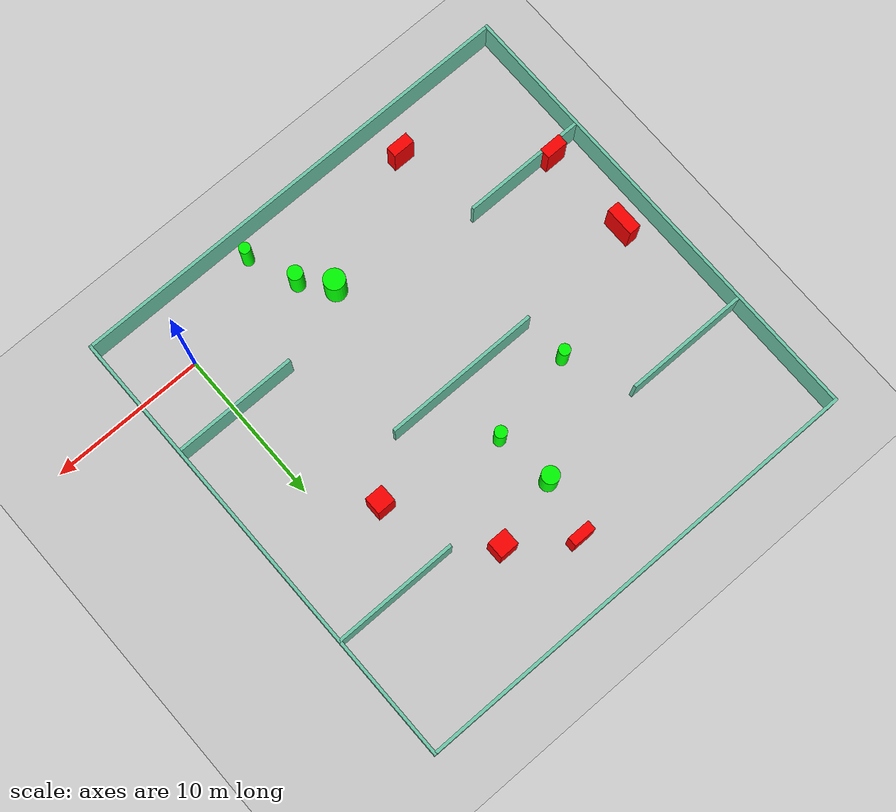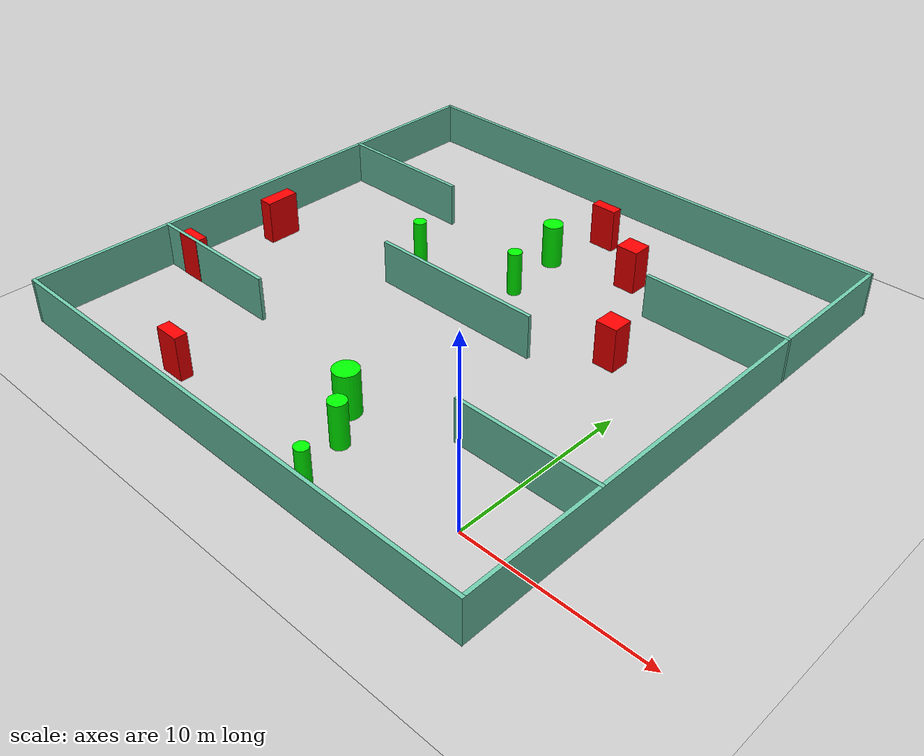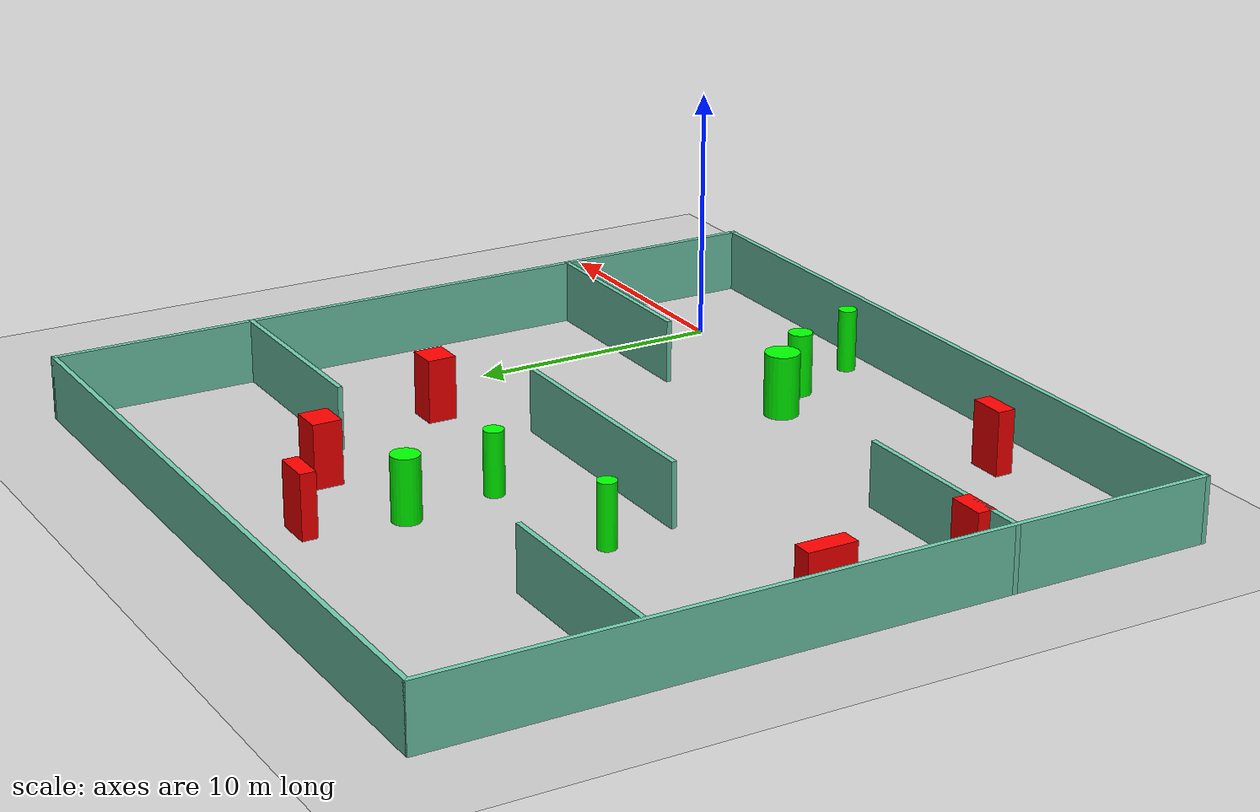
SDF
<sdf version="1.7">
 <world name="default">
  <light name="sun" type="directional">
   <pose>0 0 10 0 -0 0</pose>
   <diffuse>0.8 0.8 0.8 1</diffuse>
   <specular>0.2 0.2 0.2 1</specular>
   <attenuation>
    <range>1000</range>
    <constant>0.9</constant>
    <linear>0.01</linear>
    <quadratic>0.001</quadratic>
   </attenuation>
   <direction>-0.5 0.1 -0.9</direction>
   <spot><inner_angle>0</inner_angle><outer_angle>0</outer_angle><falloff>0</falloff></spot>
  </light>
  <model name="ground_plane">
   <static>1</static>
   <link name="link">
    <collision name="collision">
     <geometry><plane><normal>0 0 1</normal><size>100 100</size></plane></geometry>
     <surface>
      <contact><collide_bitmask>65535</collide_bitmask></contact>
      <friction><ode><mu>100</mu><mu2>50</mu2></ode></friction>
     </surface>
    </collision>
    <visual name="visual">
     <cast_shadows>0</cast_shadows>
     <geometry><plane><normal>0 0 1</normal><size>100 100</size></plane></geometry>
     <material>
      <script><uri>file://media/materials/scripts/gazebo.material</uri><name>Gazebo/Grey</name></script>
     </material>
    </visual>
   </link>
  </model>
  <gravity>0 0 -9.8</gravity>
  <magnetic_field>6e-06 2.3e-05 -4.2e-05</magnetic_field>
  <atmosphere type="adiabatic"/>
  <physics type="ode">
   <max_step_size>0.001</max_step_size>
   <real_time_factor>1</real_time_factor>
   <real_time_update_rate>1000</real_time_update_rate>
  </physics>
  <scene><ambient>0.4 0.4 0.4 1</ambient><background>0.7 0.7 0.7 1</background><shadows>1</shadows></scene>
  <spherical_coordinates>
   <surface_model>EARTH_WGS84</surface_model>
   <latitude_deg>0</latitude_deg>
   <longitude_deg>0</longitude_deg>
   <elevation>0</elevation>
   <heading_deg>0</heading_deg>
  </spherical_coordinates>
  <model name="my_base_walls">
   <link name="Wall_10">
    <collision name="Wall_10_Collision">
     <geometry><box><size>8.2 0.2 2.5</size></box></geometry>
     <pose>0 0 1.25 0 -0 0</pose>
    </collision>
    <visual name="Wall_10_Visual">
     <pose>0 0 1.25 0 -0 0</pose>
     <geometry><box><size>8.2 0.2 2.5</size></box></geometry>
     <material>
      <script><uri>file://media/materials/scripts/gazebo.material</uri><name>Gazebo/Grey</name></script>
      <ambient>0.435294 0.796078 0.67451 1</ambient>
     </material>
     <meta><layer>0</layer></meta>
    </visual>
    <pose>-11 -7 0 0 -0 0</pose>
   </link>
   <link name="Wall_12">
    <collision name="Wall_12_Collision">
     <geometry><box><size>8.2 0.2 2.5</size></box></geometry>
     <pose>0 0 1.25 0 -0 0</pose>
    </collision>
    <visual name="Wall_12_Visual">
     <pose>0 0 1.25 0 -0 0</pose>
     <geometry><box><size>8.2 0.2 2.5</size></box></geometry>
     <material>
      <script><uri>file://media/materials/scripts/gazebo.material</uri><name>Gazebo/Grey</name></script>
      <ambient>0.435294 0.796078 0.67451 1</ambient>
     </material>
     <meta><layer>0</layer></meta>
    </visual>
    <pose>-11 7 0 0 -0 0</pose>
   </link>
   <link name="Wall_14">
    <collision name="Wall_14_Collision">
     <geometry><box><size>8.2 0.2 2.5</size></box></geometry>
     <pose>0 0 1.25 0 -0 0</pose>
    </collision>
    <visual name="Wall_14_Visual">
     <pose>0 0 1.25 0 -0 0</pose>
     <geometry><box><size>8.2 0.2 2.5</size></box></geometry>
     <material>
      <script><uri>file://media/materials/scripts/gazebo.material</uri><name>Gazebo/Grey</name></script>
      <ambient>0.435294 0.796078 0.67451 1</ambient>
     </material>
     <meta><layer>0</layer></meta>
    </visual>
    <pose>11 7 0 0 -0 3.14159</pose>
   </link>
   <link name="Wall_16">
    <collision name="Wall_16_Collision">
     <geometry><box><size>10.2 0.2 2.5</size></box></geometry>
     <pose>0 0 1.25 0 -0 0</pose>
    </collision>
    <visual name="Wall_16_Visual">
     <pose>0 0 1.25 0 -0 0</pose>
     <geometry><box><size>10.2 0.2 2.5</size></box></geometry>
     <material>
      <script><uri>file://media/materials/scripts/gazebo.material</uri><name>Gazebo/Grey</name></script>
      <ambient>0.435294 0.796078 0.67451 1</ambient>
     </material>
     <meta><layer>0</layer></meta>
    </visual>
    <pose>0 0 0 0 -0 3.14159</pose>
   </link>
   <link name="Wall_2">
    <collision name="Wall_2_Collision">
     <geometry><box><size>30.2 0.2 2.5</size></box></geometry>
     <pose>0 0 1.25 0 -0 0</pose>
    </collision>
    <visual name="Wall_2_Visual">
     <pose>0 0 1.25 0 -0 0</pose>
     <geometry><box><size>30.2 0.2 2.5</size></box></geometry>
     <material>
      <script><uri>file://media/materials/scripts/gazebo.material</uri><name>Gazebo/Grey</name></script>
      <ambient>0.435294 0.796078 0.67451 1</ambient>
     </material>
     <meta><layer>0</layer></meta>
    </visual>
    <pose>0 -15 0 0 -0 3.14159</pose>
   </link>
   <link name="Wall_3">
    <collision name="Wall_3_Collision">
     <geometry><box><size>30.2 0.2 2.5</size></box></geometry>
     <pose>0 0 1.25 0 -0 0</pose>
    </collision>
    <visual name="Wall_3_Visual">
     <pose>0 0 1.25 0 -0 0</pose>
     <geometry><box><size>30.2 0.2 2.5</size></box></geometry>
     <material>
      <script><uri>file://media/materials/scripts/gazebo.material</uri><name>Gazebo/Grey</name></script>
      <ambient>0.435294 0.796078 0.67451 1</ambient>
     </material>
     <meta><layer>0</layer></meta>
    </visual>
    <pose>-15 0 0 0 -0 1.5708</pose>
   </link>
   <link name="Wall_4">
    <collision name="Wall_4_Collision">
     <geometry><box><size>30.2 0.2 2.5</size></box></geometry>
     <pose>0 0 1.25 0 -0 0</pose>
    </collision>
    <visual name="Wall_4_Visual">
     <pose>0 0 1.25 0 -0 0</pose>
     <geometry><box><size>30.2 0.2 2.5</size></box></geometry>
     <material>
      <script><uri>file://media/materials/scripts/gazebo.material</uri><name>Gazebo/Grey</name></script>
      <ambient>0.435294 0.796078 0.67451 1</ambient>
     </material>
     <meta><layer>0</layer></meta>
    </visual>
    <pose>0 15 0 0 -0 0</pose>
   </link>
   <link name="Wall_6">
    <collision name="Wall_6_Collision">
     <geometry><box><size>30.2 0.2 2.5</size></box></geometry>
     <pose>0 0 1.25 0 -0 0</pose>
    </collision>
    <visual name="Wall_6_Visual">
     <pose>0 0 1.25 0 -0 0</pose>
     <geometry><box><size>30.2 0.2 2.5</size></box></geometry>
     <material>
      <script><uri>file://media/materials/scripts/gazebo.material</uri><name>Gazebo/Grey</name></script>
      <ambient>0.435294 0.796078 0.67451 1</ambient>
     </material>
     <meta><layer>0</layer></meta>
    </visual>
    <pose>15 0 0 0 -0 1.5708</pose>
   </link>
   <link name="Wall_8">
    <collision name="Wall_8_Collision">
     <geometry><box><size>8.2 0.2 2.5</size></box></geometry>
     <pose>0 0 1.25 0 -0 0</pose>
    </collision>
    <visual name="Wall_8_Visual">
     <pose>0 0 1.25 0 -0 0</pose>
     <geometry><box><size>8.2 0.2 2.5</size></box></geometry>
     <material>
      <script><uri>file://media/materials/scripts/gazebo.material</uri><name>Gazebo/Grey</name></script>
      <ambient>0.435294 0.796078 0.67451 1</ambient>
     </material>
     <meta><layer>0</layer></meta>
    </visual>
    <pose>11 -7 0 0 -0 3.14159</pose>
   </link>
   <static>1</static>
   <pose>-11 11 0 0 -0 0</pose>
  </model>
  <model name="cylinder1">
   <static>1</static>
   <link name="link">
    <inertial>
     <mass>1</mass>
     <inertia><ixx>0.5</ixx><ixy>0</ixy><ixz>0</ixz><iyy>0.5</iyy><iyz>0</iyz><izz>1</izz></inertia>
    </inertial>
    <collision name="collision">
     <geometry><cylinder><radius>0.4738515384965745</radius><length>2.5</length></cylinder></geometry>
    </collision>
    <visual name="visual">
     <geometry><cylinder><radius>0.4738515384965745</radius><length>2.5</length></cylinder></geometry>
     <material>
      <ambient>0 1 0 1</ambient>
      <diffuse>0 1 0 1</diffuse>
      <specular>0.1 0.1 0.1 1</specular>
      <emissive>0 0 0 0</emissive>
     </material>
    </visual>
   </link>
   <pose>-7.620943807286739 0.24258739466450585 1.25 0 0 0</pose>
  </model>
  <model name="cylinder2">
   <static>1</static>
   <link name="link">
    <inertial>
     <mass>1</mass>
     <inertia><ixx>0.5</ixx><ixy>0</ixy><ixz>0</ixz><iyy>0.5</iyy><iyz>0</iyz><izz>1</izz></inertia>
    </inertial>
    <collision name="collision">
     <geometry><cylinder><radius>0.36085677407621475</radius><length>2.5</length></cylinder></geometry>
    </collision>
    <visual name="visual">
     <geometry><cylinder><radius>0.36085677407621475</radius><length>2.5</length></cylinder></geometry>
     <material>
      <ambient>0 1 0 1</ambient>
      <diffuse>0 1 0 1</diffuse>
      <specular>0.1 0.1 0.1 1</specular>
      <emissive>0 0 0 0</emissive>
     </material>
    </visual>
   </link>
   <pose>-6.368130788921034 -2.7975393512553084 1.25 0 0 0</pose>
  </model>
  <model name="cylinder3">
   <static>1</static>
   <link name="link">
    <inertial>
     <mass>1</mass>
     <inertia><ixx>0.5</ixx><ixy>0</ixy><ixz>0</ixz><iyy>0.5</iyy><iyz>0</iyz><izz>1</izz></inertia>
    </inertial>
    <collision name="collision">
     <geometry><cylinder><radius>0.5527163165358575</radius><length>2.5</length></cylinder></geometry>
    </collision>
    <visual name="visual">
     <geometry><cylinder><radius>0.5527163165358575</radius><length>2.5</length></cylinder></geometry>
     <material>
      <ambient>0 1 0 1</ambient>
      <diffuse>0 1 0 1</diffuse>
      <specular>0.1 0.1 0.1 1</specular>
      <emissive>0 0 0 0</emissive>
     </material>
    </visual>
   </link>
   <pose>-10.909639605769733 18.6788198283407 1.25 0 0 0</pose>
  </model>
  <model name="cylinder4">
   <static>1</static>
   <link name="link">
    <inertial>
     <mass>1</mass>
     <inertia><ixx>0.5</ixx><ixy>0</ixy><ixz>0</ixz><iyy>0.5</iyy><iyz>0</iyz><izz>1</izz></inertia>
    </inertial>
    <collision name="collision">
     <geometry><cylinder><radius>0.3885012002413465</radius><length>2.5</length></cylinder></geometry>
    </collision>
    <visual name="visual">
     <geometry><cylinder><radius>0.3885012002413465</radius><length>2.5</length></cylinder></geometry>
     <material>
      <ambient>0 1 0 1</ambient>
      <diffuse>0 1 0 1</diffuse>
      <specular>0.1 0.1 0.1 1</specular>
      <emissive>0 0 0 0</emissive>
     </material>
    </visual>
   </link>
   <pose>-10.428904652698911 14.99635777457226 1.25 0 0 0</pose>
  </model>
  <model name="cylinder5">
   <static>1</static>
   <link name="link">
    <inertial>
     <mass>1</mass>
     <inertia><ixx>0.5</ixx><ixy>0</ixy><ixz>0</ixz><iyy>0.5</iyy><iyz>0</iyz><izz>1</izz></inertia>
    </inertial>
    <collision name="collision">
     <geometry><cylinder><radius>0.36570904543549443</radius><length>2.5</length></cylinder></geometry>
    </collision>
    <visual name="visual">
     <geometry><cylinder><radius>0.36570904543549443</radius><length>2.5</length></cylinder></geometry>
     <material>
      <ambient>0 1 0 1</ambient>
      <diffuse>0 1 0 1</diffuse>
      <specular>0.1 0.1 0.1 1</specular>
      <emissive>0 0 0 0</emissive>
     </material>
    </visual>
   </link>
   <pose>-16.331149462271014 13.78228860752468 1.25 0 0 0</pose>
  </model>
  <model name="cylinder6">
   <static>1</static>
   <link name="link">
    <inertial>
     <mass>1</mass>
     <inertia><ixx>0.5</ixx><ixy>0</ixy><ixz>0</ixz><iyy>0.5</iyy><iyz>0</iyz><izz>1</izz></inertia>
    </inertial>
    <collision name="collision">
     <geometry><cylinder><radius>0.6787536179933277</radius><length>2.5</length></cylinder></geometry>
    </collision>
    <visual name="visual">
     <geometry><cylinder><radius>0.6787536179933277</radius><length>2.5</length></cylinder></geometry>
     <material>
      <ambient>0 1 0 1</ambient>
      <diffuse>0 1 0 1</diffuse>
      <specular>0.1 0.1 0.1 1</specular>
      <emissive>0 0 0 0</emissive>
     </material>
    </visual>
   </link>
   <pose>-9.076892059609424 2.0147792060072636 1.25 0 0 0</pose>
  </model>
  <model name="box1">
   <static>1</static>
   <link name="link">
    <inertial>
     <mass>1</mass>
     <inertia><ixx>0.083</ixx><ixy>0</ixy><ixz>0</ixz><iyy>0.083</iyy><iyz>0</iyz><izz>0.083</izz></inertia>
    </inertial>
    <collision name="collision">
     <geometry><box><size>1.2603791223354213 1.1327701898363207 2.5</size></box></geometry>
    </collision>
    <visual name="visual">
     <geometry><box><size>1.2603791223354213 1.1327701898363207 2.5</size></box></geometry>
     <material>
      <ambient>1 0 0 1</ambient>
      <diffuse>1 0 0 1</diffuse>
      <specular>0.1 0.1 0.1 1</specular>
      <emissive>0 0 0 0</emissive>
     </material>
    </visual>
    <sensor name="my_contact" type="contact">
     <contact><collision>box_collision</collision><topic>__default_topic__</topic></contact>
    </sensor>
   </link>
   <pose>-6.36270679476157 19.819564699467815 1.25 0 0 0</pose>
  </model>
  <model name="box2">
   <static>1</static>
   <link name="link">
    <inertial>
     <mass>1</mass>
     <inertia><ixx>0.083</ixx><ixy>0</ixy><ixz>0</ixz><iyy>0.083</iyy><iyz>0</iyz><izz>0.083</izz></inertia>
    </inertial>
    <collision name="collision">
     <geometry><box><size>1.4442479284346972 0.7064584532200748 2.5</size></box></geometry>
    </collision>
    <visual name="visual">
     <geometry><box><size>1.4442479284346972 0.7064584532200748 2.5</size></box></geometry>
     <material>
      <ambient>1 0 0 1</ambient>
      <diffuse>1 0 0 1</diffuse>
      <specular>0.1 0.1 0.1 1</specular>
      <emissive>0 0 0 0</emissive>
     </material>
    </visual>
    <sensor name="my_contact" type="contact">
     <contact><collision>box_collision</collision><topic>__default_topic__</topic></contact>
    </sensor>
   </link>
   <pose>-24.007061152774707 4.227593088427351 1.25 0 0 0</pose>
  </model>
  <model name="box3">
   <static>1</static>
   <link name="link">
    <inertial>
     <mass>1</mass>
     <inertia><ixx>0.083</ixx><ixy>0</ixy><ixz>0</ixz><iyy>0.083</iyy><iyz>0</iyz><izz>0.083</izz></inertia>
    </inertial>
    <collision name="collision">
     <geometry><box><size>0.7912192622792832 1.9145501433721348 2.5</size></box></geometry>
    </collision>
    <visual name="visual">
     <geometry><box><size>0.7912192622792832 1.9145501433721348 2.5</size></box></geometry>
     <material>
      <ambient>1 0 0 1</ambient>
      <diffuse>1 0 0 1</diffuse>
      <specular>0.1 0.1 0.1 1</specular>
      <emissive>0 0 0 0</emissive>
     </material>
    </visual>
    <sensor name="my_contact" type="contact">
     <contact><collision>box_collision</collision><topic>__default_topic__</topic></contact>
    </sensor>
   </link>
   <pose>-24.172079098309723 10.18090654072503 1.25 0 0 0</pose>
  </model>
  <model name="box4">
   <static>1</static>
   <link name="link">
    <inertial>
     <mass>1</mass>
     <inertia><ixx>0.083</ixx><ixy>0</ixy><ixz>0</ixz><iyy>0.083</iyy><iyz>0</iyz><izz>0.083</izz></inertia>
    </inertial>
    <collision name="collision">
     <geometry><box><size>1.4970817552488924 0.6111966111644742 2.5</size></box></geometry>
    </collision>
    <visual name="visual">
     <geometry><box><size>1.4970817552488924 0.6111966111644742 2.5</size></box></geometry>
     <material>
      <ambient>1 0 0 1</ambient>
      <diffuse>1 0 0 1</diffuse>
      <specular>0.1 0.1 0.1 1</specular>
      <emissive>0 0 0 0</emissive>
     </material>
    </visual>
    <sensor name="my_contact" type="contact">
     <contact><collision>box_collision</collision><topic>__default_topic__</topic></contact>
    </sensor>
   </link>
   <pose>-10.039414843535146 22.273100722744168 1.25 0 0 0</pose>
  </model>
  <model name="box5">
   <static>1</static>
   <link name="link">
    <inertial>
     <mass>1</mass>
     <inertia><ixx>0.083</ixx><ixy>0</ixy><ixz>0</ixz><iyy>0.083</iyy><iyz>0</iyz><izz>0.083</izz></inertia>
    </inertial>
    <collision name="collision">
     <geometry><box><size>1.4557857382303871 0.7010381894456176 2.5</size></box></geometry>
    </collision>
    <visual name="visual">
     <geometry><box><size>1.4557857382303871 0.7010381894456176 2.5</size></box></geometry>
     <material>
      <ambient>1 0 0 1</ambient>
      <diffuse>1 0 0 1</diffuse>
      <specular>0.1 0.1 0.1 1</specular>
      <emissive>0 0 0 0</emissive>
     </material>
    </visual>
    <sensor name="my_contact" type="contact">
     <contact><collision>box_collision</collision><topic>__default_topic__</topic></contact>
    </sensor>
   </link>
   <pose>-17.27398970217818 -1.7062489450234692 1.25 0 0 0</pose>
  </model>
  <model name="box6">
   <static>1</static>
   <link name="link">
    <inertial>
     <mass>1</mass>
     <inertia><ixx>0.083</ixx><ixy>0</ixy><ixz>0</ixz><iyy>0.083</iyy><iyz>0</iyz><izz>0.083</izz></inertia>
    </inertial>
    <collision name="collision">
     <geometry><box><size>1.211014204434278 1.1405659694532035 2.5</size></box></geometry>
    </collision>
    <visual name="visual">
     <geometry><box><size>1.211014204434278 1.1405659694532035 2.5</size></box></geometry>
     <material>
      <ambient>1 0 0 1</ambient>
      <diffuse>1 0 0 1</diffuse>
      <specular>0.1 0.1 0.1 1</specular>
      <emissive>0 0 0 0</emissive>
     </material>
    </visual>
    <sensor name="my_contact" type="contact">
     <contact><collision>box_collision</collision><topic>__default_topic__</topic></contact>
    </sensor>
   </link>
   <pose>-2.777527948571823 13.4769836453105 1.25 0 0 0</pose>
  </model>
 </world>
</sdf>
